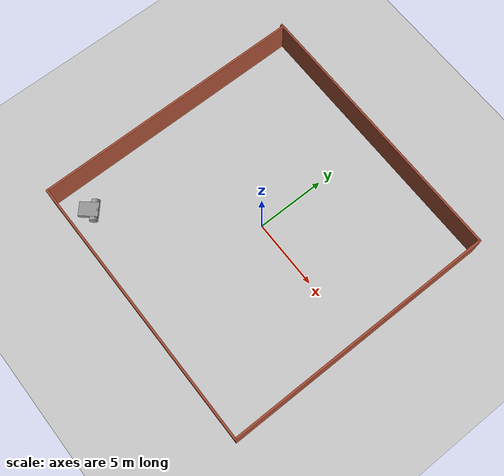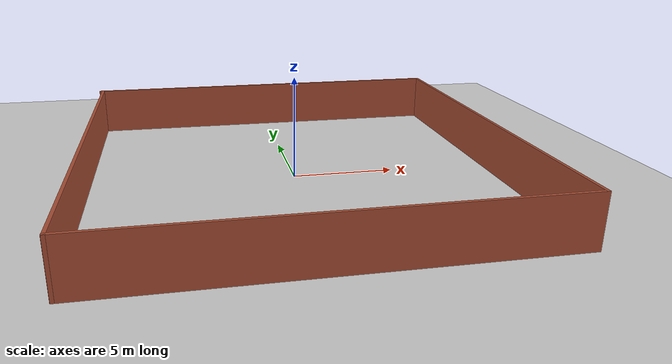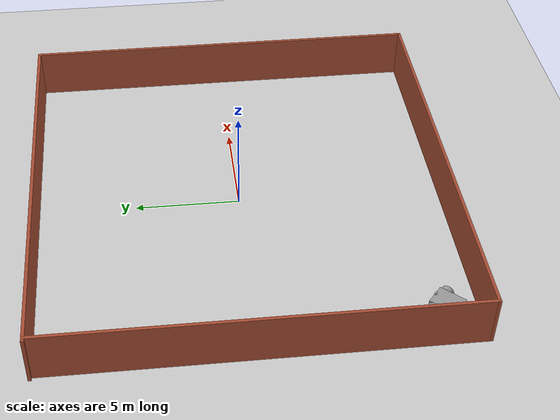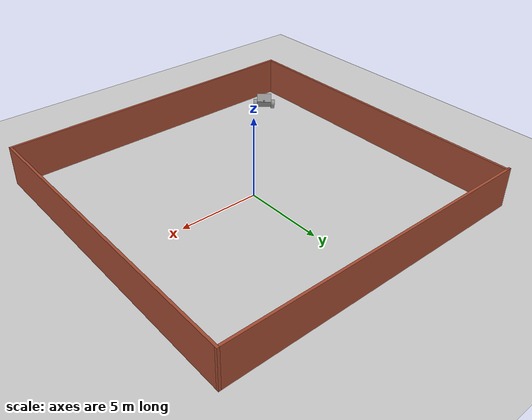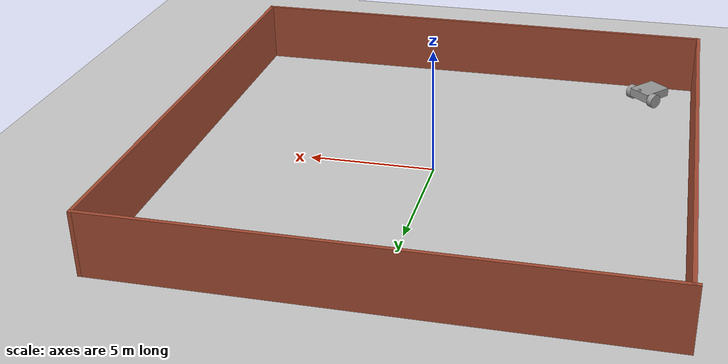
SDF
<sdf version="1.6">
 <world name="default">
  <model name="ground_plane">
   <static>1</static>
   <link name="link">
    <collision name="collision">
     <geometry><plane><normal>0 0 1</normal><size>100 100</size></plane></geometry>
     <surface><friction><ode><mu>100</mu><mu2>50</mu2></ode></friction></surface>
    </collision>
    <visual name="visual">
     <cast_shadows>0</cast_shadows>
     <geometry><plane><normal>0 0 1</normal><size>100 100</size></plane></geometry>
     <material>
      <script><uri>file://media/materials/scripts/gazebo.material</uri><name>Gazebo/Grey</name></script>
     </material>
    </visual>
   </link>
  </model>
  <light name="sun" type="directional">
   <pose>0 0 10 0 -0 0</pose>
   <diffuse>0.8 0.8 0.8 1</diffuse>
   <specular>0.1 0.1 0.1 1</specular>
   <attenuation>
    <range>1000</range>
    <constant>0.9</constant>
    <linear>0.01</linear>
    <quadratic>0.001</quadratic>
   </attenuation>
   <direction>-0.5 0.5 -1</direction>
  </light>
  <gravity>0 0 -9.8</gravity>
  <magnetic_field>6e-06 2.3e-05 -4.2e-05</magnetic_field>
  <atmosphere type="adiabatic"/>
  <physics name="default_physics" default="0" type="ode">
   <max_step_size>0.001</max_step_size>
   <real_time_factor>1</real_time_factor>
   <real_time_update_rate>1000</real_time_update_rate>
  </physics>
  <scene><ambient>0.4 0.4 0.4 1</ambient><background>0.7 0.7 0.7 1</background><shadows>1</shadows></scene>
  <spherical_coordinates>
   <surface_model>EARTH_WGS84</surface_model>
   <latitude_deg>0</latitude_deg>
   <longitude_deg>0</longitude_deg>
   <elevation>0</elevation>
   <heading_deg>0</heading_deg>
  </spherical_coordinates>
  <model name="WallAround">
   <pose>-0.032539 -0.080125 0 0 -0 0</pose>
   <link name="Wall_4">
    <collision name="Wall_4_Collision">
     <geometry><box><size>20 0.15 2.5</size></box></geometry>
     <pose>0 0 1.25 0 -0 0</pose>
    </collision>
    <visual name="Wall_4_Visual">
     <pose>0 0 1.25 0 -0 0</pose>
     <geometry><box><size>20 0.15 2.5</size></box></geometry>
     <material>
      <script><uri>file://media/materials/scripts/gazebo.material</uri><name>Gazebo/Bricks</name></script>
      <ambient>1 1 1 1</ambient>
     </material>
     <meta><layer>0</layer></meta>
    </visual>
    <pose>0.064846 -9.8 0 0 -0 3.14159</pose>
   </link>
   <link name="Wall_6">
    <collision name="Wall_6_Collision">
     <geometry><box><size>19.75 0.15 2.5</size></box></geometry>
     <pose>0 0 1.25 0 -0 0</pose>
    </collision>
    <visual name="Wall_6_Visual">
     <pose>0 0 1.25 0 -0 0</pose>
     <geometry><box><size>19.75 0.15 2.5</size></box></geometry>
     <material>
      <script><uri>file://media/materials/scripts/gazebo.material</uri><name>Gazebo/Bricks</name></script>
      <ambient>1 1 1 1</ambient>
     </material>
     <meta><layer>0</layer></meta>
    </visual>
    <pose>9.98985 0 0 0 -0 1.5708</pose>
   </link>
   <link name="Wall_7">
    <collision name="Wall_7_Collision">
     <geometry><box><size>20.1297 0.15 2.5</size></box></geometry>
     <pose>0 0 1.25 0 -0 0</pose>
    </collision>
    <visual name="Wall_7_Visual">
     <pose>0 0 1.25 0 -0 0</pose>
     <geometry><box><size>20.1297 0.15 2.5</size></box></geometry>
     <material>
      <script><uri>file://media/materials/scripts/gazebo.material</uri><name>Gazebo/Bricks</name></script>
      <ambient>1 1 1 1</ambient>
     </material>
     <meta><layer>0</layer></meta>
    </visual>
    <pose>-1e-06 9.8 0 0 -0 3.14159</pose>
   </link>
   <link name="Wall_8">
    <collision name="Wall_8_Collision">
     <geometry><box><size>19.75 0.15 2.5</size></box></geometry>
     <pose>0 0 1.25 0 -0 0</pose>
    </collision>
    <visual name="Wall_8_Visual">
     <pose>0 0 1.25 0 -0 0</pose>
     <geometry><box><size>19.75 0.15 2.5</size></box></geometry>
     <material>
      <script><uri>file://media/materials/scripts/gazebo.material</uri><name>Gazebo/Bricks</name></script>
      <ambient>1 1 1 1</ambient>
     </material>
     <meta><layer>0</layer></meta>
    </visual>
    <pose>-9.85451 0 0 0 0 -1.5708</pose>
   </link>
   <static>1</static>
  </model>
  <model name="my_vehicle">
   <link name="link_0">
    <pose>-0.067114 0 0.1 0 -0 0</pose>
    <inertial>
     <mass>0.496123</mass>
     <inertia>
      <ixx>0.0470373</ixx>
      <ixy>0</ixy>
      <ixz>0</ixz>
      <iyy>0.0795878</iyy>
      <iyz>0</iyz>
      <izz>0.115238</izz>
     </inertia>
    </inertial>
    <visual name="visual">
     <geometry><box><size>1.33691 1 0.371105</size></box></geometry>
     <material>
      <lighting>1</lighting>
      <script><uri>file://media/materials/scripts/gazebo.material</uri><name>Gazebo/Grey</name></script>
      <ambient>0.3 0.3 0.3 1</ambient>
      <diffuse>0.7 0.7 0.7 1</diffuse>
      <specular>0.01 0.01 0.01 1</specular>
      <emissive>0 0 0 1</emissive>
      <shader type="vertex"><normal_map>__default__</normal_map></shader>
     </material>
    </visual>
    <collision name="collision">
     <geometry><box><size>1.33691 1 0.371105</size></box></geometry>
     <surface>
      <friction>
       <ode><mu>1</mu><mu2>1</mu2><fdir1>0 0 0</fdir1><slip1>0</slip1><slip2>0</slip2></ode>
       <torsional>
        <coefficient>1</coefficient>
        <patch_radius>0</patch_radius>
        <surface_radius>0</surface_radius>
        <use_patch_radius>1</use_patch_radius>
        <ode><slip>0</slip></ode>
       </torsional>
      </friction>
      <bounce><restitution_coefficient>0</restitution_coefficient><threshold>1e+06</threshold></bounce>
      <contact>
       <collide_without_contact>0</collide_without_contact>
       <collide_without_contact_bitmask>1</collide_without_contact_bitmask>
       <collide_bitmask>1</collide_bitmask>
       <ode>
        <soft_cfm>0</soft_cfm>
        <soft_erp>0.2</soft_erp>
        <kp>1e+13</kp>
        <kd>1</kd>
        <max_vel>0.01</max_vel>
        <min_depth>0</min_depth>
       </ode>
       <bullet>
        <split_impulse>1</split_impulse>
        <split_impulse_penetration_threshold>-0.01</split_impulse_penetration_threshold>
        <soft_cfm>0</soft_cfm>
        <soft_erp>0.2</soft_erp>
        <kp>1e+13</kp>
        <kd>1</kd>
       </bullet>
      </contact>
     </surface>
    </collision>
   </link>
   <link name="link_1">
    <pose>0.301341 -0.625029 0 1.5707 -0 0</pose>
    <inertial>
     <mass>1</mass>
     <inertia><ixx>0.145833</ixx><ixy>0</ixy><ixz>0</ixz><iyy>0.145833</iyy><iyz>0</iyz><izz>0.125</izz></inertia>
    </inertial>
    <visual name="visual">
     <geometry><cylinder><radius>0.3</radius><length>0.25</length></cylinder></geometry>
     <material>
      <lighting>1</lighting>
      <script><uri>file://media/materials/scripts/gazebo.material</uri><name>Gazebo/Grey</name></script>
      <ambient>0.3 0.3 0.3 1</ambient>
      <diffuse>0.7 0.7 0.7 1</diffuse>
      <specular>0.01 0.01 0.01 1</specular>
      <emissive>0 0 0 1</emissive>
      <shader type="vertex"><normal_map>__default__</normal_map></shader>
     </material>
    </visual>
    <collision name="collision">
     <geometry><cylinder><radius>0.3</radius><length>0.25</length></cylinder></geometry>
     <surface>
      <friction>
       <ode><mu>1</mu><mu2>1</mu2><fdir1>0 0 0</fdir1><slip1>0</slip1><slip2>0</slip2></ode>
       <torsional>
        <coefficient>1</coefficient>
        <patch_radius>0</patch_radius>
        <surface_radius>0</surface_radius>
        <use_patch_radius>1</use_patch_radius>
        <ode><slip>0</slip></ode>
       </torsional>
      </friction>
      <bounce><restitution_coefficient>0</restitution_coefficient><threshold>1e+06</threshold></bounce>
      <contact>
       <collide_without_contact>0</collide_without_contact>
       <collide_without_contact_bitmask>1</collide_without_contact_bitmask>
       <collide_bitmask>1</collide_bitmask>
       <ode>
        <soft_cfm>0</soft_cfm>
        <soft_erp>0.2</soft_erp>
        <kp>1e+13</kp>
        <kd>1</kd>
        <max_vel>0.01</max_vel>
        <min_depth>0</min_depth>
       </ode>
       <bullet>
        <split_impulse>1</split_impulse>
        <split_impulse_penetration_threshold>-0.01</split_impulse_penetration_threshold>
        <soft_cfm>0</soft_cfm>
        <soft_erp>0.2</soft_erp>
        <kp>1e+13</kp>
        <kd>1</kd>
       </bullet>
      </contact>
     </surface>
    </collision>
   </link>
   <link name="link_1_clone">
    <pose>0.301341 0.625029 -0 1.5707 -0 0</pose>
    <inertial>
     <mass>1</mass>
     <inertia><ixx>0.145833</ixx><ixy>0</ixy><ixz>0</ixz><iyy>0.145833</iyy><iyz>0</iyz><izz>0.125</izz></inertia>
    </inertial>
    <visual name="visual">
     <geometry><cylinder><radius>0.3</radius><length>0.25</length></cylinder></geometry>
     <material>
      <lighting>1</lighting>
      <script><uri>file://media/materials/scripts/gazebo.material</uri><name>Gazebo/Grey</name></script>
      <ambient>0.3 0.3 0.3 1</ambient>
      <diffuse>0.7 0.7 0.7 1</diffuse>
      <specular>0.01 0.01 0.01 1</specular>
      <emissive>0 0 0 1</emissive>
      <shader type="vertex"><normal_map>__default__</normal_map></shader>
     </material>
    </visual>
    <collision name="collision">
     <geometry><cylinder><radius>0.3</radius><length>0.25</length></cylinder></geometry>
     <surface>
      <friction>
       <ode><mu>1</mu><mu2>1</mu2><fdir1>0 0 0</fdir1><slip1>0</slip1><slip2>0</slip2></ode>
       <torsional>
        <coefficient>1</coefficient>
        <patch_radius>0</patch_radius>
        <surface_radius>0</surface_radius>
        <use_patch_radius>1</use_patch_radius>
        <ode><slip>0</slip></ode>
       </torsional>
      </friction>
      <bounce><restitution_coefficient>0</restitution_coefficient><threshold>1e+06</threshold></bounce>
      <contact>
       <collide_without_contact>0</collide_without_contact>
       <collide_without_contact_bitmask>1</collide_without_contact_bitmask>
       <collide_bitmask>1</collide_bitmask>
       <ode>
        <soft_cfm>0</soft_cfm>
        <soft_erp>0.2</soft_erp>
        <kp>1e+13</kp>
        <kd>1</kd>
        <max_vel>0.01</max_vel>
        <min_depth>0</min_depth>
       </ode>
       <bullet>
        <split_impulse>1</split_impulse>
        <split_impulse_penetration_threshold>-0.01</split_impulse_penetration_threshold>
        <soft_cfm>0</soft_cfm>
        <soft_erp>0.2</soft_erp>
        <kp>1e+13</kp>
        <kd>1</kd>
       </bullet>
      </contact>
     </surface>
    </collision>
   </link>
   <link name="link_2">
    <pose>-0.535569 0 -0.1 0 -0 0</pose>
    <inertial>
     <mass>1</mass>
     <inertia><ixx>0.1</ixx><ixy>0</ixy><ixz>0</ixz><iyy>0.1</iyy><iyz>0</iyz><izz>0.1</izz></inertia>
    </inertial>
    <visual name="visual">
     <geometry><sphere><radius>0.2</radius></sphere></geometry>
     <material>
      <lighting>1</lighting>
      <script><uri>file://media/materials/scripts/gazebo.material</uri><name>Gazebo/Grey</name></script>
      <ambient>0.3 0.3 0.3 1</ambient>
      <diffuse>0.7 0.7 0.7 1</diffuse>
      <specular>0.01 0.01 0.01 1</specular>
      <emissive>0 0 0 1</emissive>
      <shader type="vertex"><normal_map>__default__</normal_map></shader>
     </material>
    </visual>
    <collision name="collision">
     <geometry><sphere><radius>0.2</radius></sphere></geometry>
     <surface>
      <friction>
       <ode><mu>1</mu><mu2>1</mu2><fdir1>0 0 0</fdir1><slip1>0</slip1><slip2>0</slip2></ode>
       <torsional>
        <coefficient>1</coefficient>
        <patch_radius>0</patch_radius>
        <surface_radius>0</surface_radius>
        <use_patch_radius>1</use_patch_radius>
        <ode><slip>0</slip></ode>
       </torsional>
      </friction>
      <bounce><restitution_coefficient>0</restitution_coefficient><threshold>1e+06</threshold></bounce>
      <contact>
       <collide_without_contact>0</collide_without_contact>
       <collide_without_contact_bitmask>1</collide_without_contact_bitmask>
       <collide_bitmask>1</collide_bitmask>
       <ode>
        <soft_cfm>0</soft_cfm>
        <soft_erp>0.2</soft_erp>
        <kp>1e+13</kp>
        <kd>1</kd>
        <max_vel>0.01</max_vel>
        <min_depth>0</min_depth>
       </ode>
       <bullet>
        <split_impulse>1</split_impulse>
        <split_impulse_penetration_threshold>-0.01</split_impulse_penetration_threshold>
        <soft_cfm>0</soft_cfm>
        <soft_erp>0.2</soft_erp>
        <kp>1e+13</kp>
        <kd>1</kd>
       </bullet>
      </contact>
     </surface>
    </collision>
   </link>
   <model name="depth_camera">
    <link name="link">
     <pose>0 0 0.05 0 -0 0</pose>
     <inertial>
      <mass>0.1</mass>
      <inertia>
       <ixx>0.000166667</ixx>
       <iyy>0.000166667</iyy>
       <izz>0.000166667</izz>
       <ixy>0</ixy>
       <ixz>0</ixz>
       <iyz>0</iyz>
      </inertia>
     </inertial>
     <collision name="collision"><geometry><box><size>0.1 0.1 0.1</size></box></geometry></collision>
     <visual name="visual"><geometry><box><size>0.1 0.1 0.1</size></box></geometry></visual>
     <sensor name="camera" type="depth">
      <camera name="__default__">
       <horizontal_fov>1.047</horizontal_fov>
       <image><width>320</width><height>240</height></image>
       <clip><near>0.1</near><far>100</far></clip>
      </camera>
      <always_on>1</always_on>
      <update_rate>30</update_rate>
      <visualize>1</visualize>
     </sensor>
    </link>
    <pose>0.550699 -0.009571 0.287562 0 -0 0</pose>
   </model>
   <joint name="link_0_JOINT_0_0" type="fixed">
    <parent>link_0</parent>
    <child>depth_camera::link</child>
    <physics>
     <ode><limit><cfm>0</cfm><erp>0.2</erp></limit><suspension><cfm>0</cfm><erp>0.2</erp></suspension></ode>
    </physics>
   </joint>
   <joint name="link_0_JOINT_0" type="revolute">
    <parent>link_0</parent>
    <child>link_1_clone</child>
    <axis>
     <xyz>0 0 1</xyz>
     <use_parent_model_frame>0</use_parent_model_frame>
     <limit>
      <lower>-1.79769e+308</lower>
      <upper>1.79769e+308</upper>
      <effort>-1</effort>
      <velocity>-1</velocity>
     </limit>
     <dynamics>
      <spring_reference>0</spring_reference>
      <spring_stiffness>0</spring_stiffness>
      <damping>0</damping>
      <friction>0</friction>
     </dynamics>
    </axis>
    <physics>
     <ode><limit><cfm>0</cfm><erp>0.2</erp></limit><suspension><cfm>0</cfm><erp>0.2</erp></suspension></ode>
    </physics>
   </joint>
   <joint name="link_0_JOINT_1" type="revolute">
    <parent>link_0</parent>
    <child>link_1</child>
    <axis>
     <xyz>0 0 1</xyz>
     <use_parent_model_frame>0</use_parent_model_frame>
     <limit>
      <lower>-1.79769e+308</lower>
      <upper>1.79769e+308</upper>
      <effort>-1</effort>
      <velocity>-1</velocity>
     </limit>
     <dynamics>
      <spring_reference>0</spring_reference>
      <spring_stiffness>0</spring_stiffness>
      <damping>0</damping>
      <friction>0</friction>
     </dynamics>
    </axis>
    <physics>
     <ode><limit><cfm>0</cfm><erp>0.2</erp></limit><suspension><cfm>0</cfm><erp>0.2</erp></suspension></ode>
    </physics>
   </joint>
   <joint name="link_0_JOINT_2" type="ball">
    <parent>link_0</parent>
    <child>link_2</child>
    <physics>
     <ode><limit><cfm>0</cfm><erp>0.2</erp></limit><suspension><cfm>0</cfm><erp>0.2</erp></suspension></ode>
    </physics>
   </joint>
   <static>0</static>
   <plugin name="follower" filename="libFollowerPlugin.so"/>
   <pose>-7.93636 -8.36405 0.300008 -1.3e-05 -5e-06 0.846719</pose>
  </model>
 </world>
</sdf>
